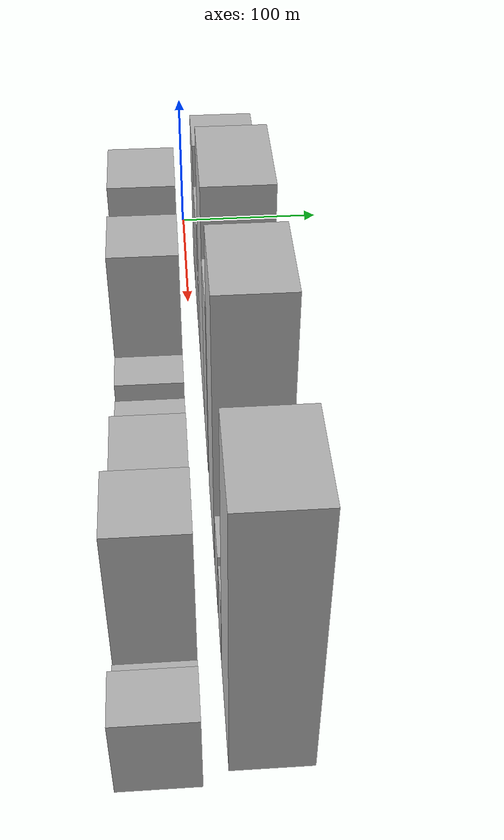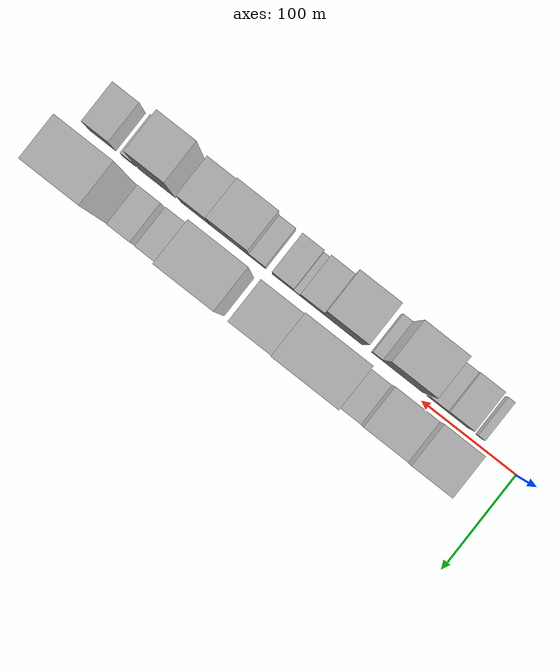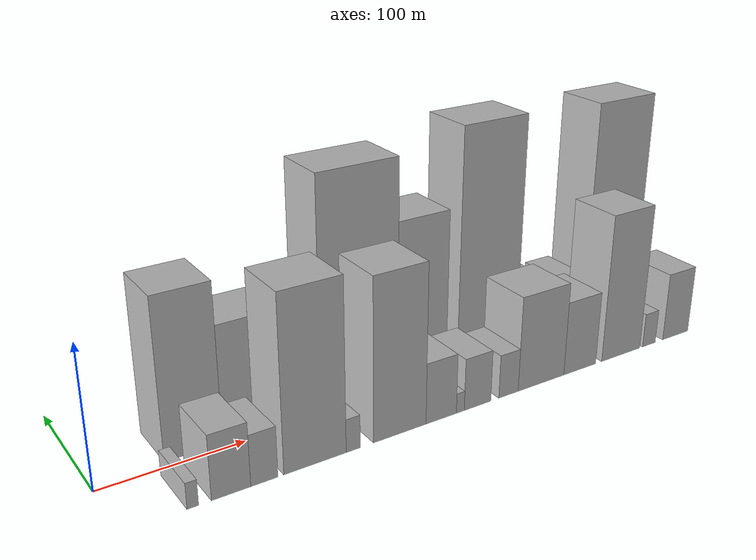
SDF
<sdf version="1.6">
 <world name="default">
  <scene>
   <sky><clouds><speed>12</speed></clouds></sky>
   <ambient>0.4 0.4 0.4 1</ambient>
   <background>0.7 0.7 0.7 1</background>
   <shadows>1</shadows>
  </scene>
  <gravity>0 0 -9.8066</gravity>
  <magnetic_field>6e-06 2.3e-05 -4.2e-05</magnetic_field>
  <physics default="0" name="default_physics" type="ode">
   <ode>
    <solver>
     <type>quick</type>
     <iters>10</iters>
     <sor>1.0</sor>
     <use_dynamic_moi_rescaling>0</use_dynamic_moi_rescaling>
    </solver>
    <constraints>
     <cfm>0</cfm>
     <erp>0.2</erp>
     <contact_max_correcting_vel>100</contact_max_correcting_vel>
     <contact_surface_layer>0.001</contact_surface_layer>
    </constraints>
   </ode>
   <max_step_size>0.004</max_step_size>
   <real_time_factor>1</real_time_factor>
   <real_time_update_rate>250</real_time_update_rate>
  </physics>
  <light name="sun" type="directional">
   <pose>0 0 10 0 0 0</pose>
   <diffuse>0.8 0.8 0.8 1</diffuse>
   <specular>0.2 0.2 0.2 1</specular>
   <attenuation>
    <range>1000</range>
    <constant>0.9</constant>
    <linear>0.01</linear>
    <quadratic>0.001</quadratic>
   </attenuation>
   <direction>-0.5 0.1 -0.9</direction>
  </light>
  <model name="building_1">
   <static>1</static>
   <pose>66.8223 26.0000 0 0.000000 0.000000 1.570796</pose>
   <link name="link">
    <pose>0 0 57.00 0 0 0</pose>
    <collision name="collision"><geometry><box><size>40.0000 39.6447 114.0000</size></box></geometry></collision>
    <visual name="visual">
     <cast_shadows>0</cast_shadows>
     <geometry><box><size>40.0000 39.6447 114.0000</size></box></geometry>
     <material>
      <script>
       <uri>model://HANNAS_wall/materials/scripts</uri>
       <uri>model://HANNAS_wall/materials/textures</uri>
       <name>vrc/HANNAS_wall</name>
      </script>
     </material>
    </visual>
   </link>
  </model>
  <model name="building_2">
   <static>1</static>
   <pose>108.6687 26.0000 0 0.000000 0.000000 1.570796</pose>
   <link name="link">
    <pose>0 0 42.00 0 0 0</pose>
    <collision name="collision"><geometry><box><size>40.0000 44.0480 84.0000</size></box></geometry></collision>
    <visual name="visual">
     <cast_shadows>0</cast_shadows>
     <geometry><box><size>40.0000 44.0480 84.0000</size></box></geometry>
     <material>
      <script>
       <uri>model://HANNAS_wall/materials/scripts</uri>
       <uri>model://HANNAS_wall/materials/textures</uri>
       <name>vrc/HANNAS_wall</name>
      </script>
     </material>
    </visual>
   </link>
  </model>
  <model name="building_3">
   <static>1</static>
   <pose>144.6957 26.0000 0 0.000000 0.000000 1.570796</pose>
   <link name="link">
    <pose>0 0 24.00 0 0 0</pose>
    <collision name="collision"><geometry><box><size>40.0000 28.0060 48.0000</size></box></geometry></collision>
    <visual name="visual">
     <cast_shadows>0</cast_shadows>
     <geometry><box><size>40.0000 28.0060 48.0000</size></box></geometry>
     <material>
      <script>
       <uri>model://HANNAS_wall/materials/scripts</uri>
       <uri>model://HANNAS_wall/materials/textures</uri>
       <name>vrc/HANNAS_wall</name>
      </script>
     </material>
    </visual>
   </link>
  </model>
  <model name="building_4">
   <static>1</static>
   <pose>189.7452 26.0000 0 0.000000 0.000000 1.570796</pose>
   <link name="link">
    <pose>0 0 84.00 0 0 0</pose>
    <collision name="collision"><geometry><box><size>40.0000 62.0931 168.0000</size></box></geometry></collision>
    <visual name="visual">
     <cast_shadows>0</cast_shadows>
     <geometry><box><size>40.0000 62.0931 168.0000</size></box></geometry>
     <material>
      <script>
       <uri>model://HANNAS_wall/materials/scripts</uri>
       <uri>model://HANNAS_wall/materials/textures</uri>
       <name>vrc/HANNAS_wall</name>
      </script>
     </material>
    </visual>
   </link>
  </model>
  <model name="building_5">
   <static>1</static>
   <pose>241.5375 26.0000 0 0.000000 0.000000 1.570796</pose>
   <link name="link">
    <pose>0 0 61.50 0 0 0</pose>
    <collision name="collision"><geometry><box><size>40.0000 41.4915 123.0000</size></box></geometry></collision>
    <visual name="visual">
     <cast_shadows>0</cast_shadows>
     <geometry><box><size>40.0000 41.4915 123.0000</size></box></geometry>
     <material>
      <script>
       <uri>model://HANNAS_wall/materials/scripts</uri>
       <uri>model://HANNAS_wall/materials/textures</uri>
       <name>vrc/HANNAS_wall</name>
      </script>
     </material>
    </visual>
   </link>
  </model>
  <model name="building_6">
   <static>1</static>
   <pose>299.5882 26.0000 0 0.000000 0.000000 1.570796</pose>
   <link name="link">
    <pose>0 0 90.00 0 0 0</pose>
    <collision name="collision"><geometry><box><size>40.0000 54.6101 180.0000</size></box></geometry></collision>
    <visual name="visual">
     <cast_shadows>0</cast_shadows>
     <geometry><box><size>40.0000 54.6101 180.0000</size></box></geometry>
     <material>
      <script>
       <uri>model://HANNAS_wall/materials/scripts</uri>
       <uri>model://HANNAS_wall/materials/textures</uri>
       <name>vrc/HANNAS_wall</name>
      </script>
     </material>
    </visual>
   </link>
  </model>
  <model name="building_7">
   <static>1</static>
   <pose>330.7114 26.0000 0 0.000000 0.000000 1.570796</pose>
   <link name="link">
    <pose>0 0 9.00 0 0 0</pose>
    <collision name="collision"><geometry><box><size>40.0000 7.6363 18.0000</size></box></geometry></collision>
    <visual name="visual">
     <cast_shadows>0</cast_shadows>
     <geometry><box><size>40.0000 7.6363 18.0000</size></box></geometry>
     <material>
      <script>
       <uri>model://HANNAS_wall/materials/scripts</uri>
       <uri>model://HANNAS_wall/materials/textures</uri>
       <name>vrc/HANNAS_wall</name>
      </script>
     </material>
    </visual>
   </link>
  </model>
  <model name="building_8">
   <static>1</static>
   <pose>347.9633 26.0000 0 0.000000 0.000000 1.570796</pose>
   <link name="link">
    <pose>0 0 22.50 0 0 0</pose>
    <collision name="collision"><geometry><box><size>40.0000 26.8674 45.0000</size></box></geometry></collision>
    <visual name="visual">
     <cast_shadows>0</cast_shadows>
     <geometry><box><size>40.0000 26.8674 45.0000</size></box></geometry>
     <material>
      <script>
       <uri>model://HANNAS_wall/materials/scripts</uri>
       <uri>model://HANNAS_wall/materials/textures</uri>
       <name>vrc/HANNAS_wall</name>
      </script>
     </material>
    </visual>
   </link>
  </model>
  <model name="building_9">
   <static>1</static>
   <pose>378.2147 26.0000 0 0.000000 0.000000 1.570796</pose>
   <link name="link">
    <pose>0 0 22.50 0 0 0</pose>
    <collision name="collision"><geometry><box><size>40.0000 23.6355 45.0000</size></box></geometry></collision>
    <visual name="visual">
     <cast_shadows>0</cast_shadows>
     <geometry><box><size>40.0000 23.6355 45.0000</size></box></geometry>
     <material>
      <script>
       <uri>model://HANNAS_wall/materials/scripts</uri>
       <uri>model://HANNAS_wall/materials/textures</uri>
       <name>vrc/HANNAS_wall</name>
      </script>
     </material>
    </visual>
   </link>
  </model>
  <model name="building_10">
   <static>1</static>
   <pose>421.1120 26.0000 0 0.000000 0.000000 1.570796</pose>
   <link name="link">
    <pose>0 0 88.50 0 0 0</pose>
    <collision name="collision"><geometry><box><size>40.0000 54.1592 177.0000</size></box></geometry></collision>
    <visual name="visual">
     <cast_shadows>0</cast_shadows>
     <geometry><box><size>40.0000 54.1592 177.0000</size></box></geometry>
     <material>
      <script>
       <uri>model://HANNAS_wall/materials/scripts</uri>
       <uri>model://HANNAS_wall/materials/textures</uri>
       <name>vrc/HANNAS_wall</name>
      </script>
     </material>
    </visual>
   </link>
  </model>
  <model name="building_11">
   <static>1</static>
   <pose>43.6693 -26.0000 0 0.000000 0.000000 1.570796</pose>
   <link name="link">
    <pose>0 0 9.00 0 0 0</pose>
    <collision name="collision"><geometry><box><size>40.0000 7.3385 18.0000</size></box></geometry></collision>
    <visual name="visual">
     <cast_shadows>0</cast_shadows>
     <geometry><box><size>40.0000 7.3385 18.0000</size></box></geometry>
     <material>
      <script>
       <uri>model://HANNAS_wall/materials/scripts</uri>
       <uri>model://HANNAS_wall/materials/textures</uri>
       <name>vrc/HANNAS_wall</name>
      </script>
     </material>
    </visual>
   </link>
  </model>
  <model name="building_12">
   <static>1</static>
   <pose>68.1040 -26.0000 0 0.000000 0.000000 1.570796</pose>
   <link name="link">
    <pose>0 0 22.50 0 0 0</pose>
    <collision name="collision"><geometry><box><size>40.0000 25.5310 45.0000</size></box></geometry></collision>
    <visual name="visual">
     <cast_shadows>0</cast_shadows>
     <geometry><box><size>40.0000 25.5310 45.0000</size></box></geometry>
     <material>
      <script>
       <uri>model://HANNAS_wall/materials/scripts</uri>
       <uri>model://HANNAS_wall/materials/textures</uri>
       <name>vrc/HANNAS_wall</name>
      </script>
     </material>
    </visual>
   </link>
  </model>
  <model name="building_13">
   <static>1</static>
   <pose>89.9854 -26.0000 0 0.000000 0.000000 1.570796</pose>
   <link name="link">
    <pose>0 0 18.00 0 0 0</pose>
    <collision name="collision"><geometry><box><size>40.0000 18.2319 36.0000</size></box></geometry></collision>
    <visual name="visual">
     <cast_shadows>0</cast_shadows>
     <geometry><box><size>40.0000 18.2319 36.0000</size></box></geometry>
     <material>
      <script>
       <uri>model://HANNAS_wall/materials/scripts</uri>
       <uri>model://HANNAS_wall/materials/textures</uri>
       <name>vrc/HANNAS_wall</name>
      </script>
     </material>
    </visual>
   </link>
  </model>
  <model name="building_14">
   <static>1</static>
   <pose>125.2123 -26.0000 0 0.000000 0.000000 1.570796</pose>
   <link name="link">
    <pose>0 0 61.50 0 0 0</pose>
    <collision name="collision"><geometry><box><size>40.0000 44.2219 123.0000</size></box></geometry></collision>
    <visual name="visual">
     <cast_shadows>0</cast_shadows>
     <geometry><box><size>40.0000 44.2219 123.0000</size></box></geometry>
     <material>
      <script>
       <uri>model://HANNAS_wall/materials/scripts</uri>
       <uri>model://HANNAS_wall/materials/textures</uri>
       <name>vrc/HANNAS_wall</name>
      </script>
     </material>
    </visual>
   </link>
  </model>
  <model name="building_15">
   <static>1</static>
   <pose>152.5214 -26.0000 0 0.000000 0.000000 1.570796</pose>
   <link name="link">
    <pose>0 0 12.00 0 0 0</pose>
    <collision name="collision"><geometry><box><size>40.0000 10.3963 24.0000</size></box></geometry></collision>
    <visual name="visual">
     <cast_shadows>0</cast_shadows>
     <geometry><box><size>40.0000 10.3963 24.0000</size></box></geometry>
     <material>
      <script>
       <uri>model://HANNAS_wall/materials/scripts</uri>
       <uri>model://HANNAS_wall/materials/textures</uri>
       <name>vrc/HANNAS_wall</name>
      </script>
     </material>
    </visual>
   </link>
  </model>
  <model name="building_16">
   <static>1</static>
   <pose>188.0706 -26.0000 0 0.000000 0.000000 1.570796</pose>
   <link name="link">
    <pose>0 0 58.50 0 0 0</pose>
    <collision name="collision"><geometry><box><size>40.0000 40.7020 117.0000</size></box></geometry></collision>
    <visual name="visual">
     <cast_shadows>0</cast_shadows>
     <geometry><box><size>40.0000 40.7020 117.0000</size></box></geometry>
     <material>
      <script>
       <uri>model://HANNAS_wall/materials/scripts</uri>
       <uri>model://HANNAS_wall/materials/textures</uri>
       <name>vrc/HANNAS_wall</name>
      </script>
     </material>
    </visual>
   </link>
  </model>
  <model name="building_17">
   <static>1</static>
   <pose>220.8014 -26.0000 0 0.000000 0.000000 1.570796</pose>
   <link name="link">
    <pose>0 0 22.50 0 0 0</pose>
    <collision name="collision"><geometry><box><size>40.0000 24.7597 45.0000</size></box></geometry></collision>
    <visual name="visual">
     <cast_shadows>0</cast_shadows>
     <geometry><box><size>40.0000 24.7597 45.0000</size></box></geometry>
     <material>
      <script>
       <uri>model://HANNAS_wall/materials/scripts</uri>
       <uri>model://HANNAS_wall/materials/textures</uri>
       <name>vrc/HANNAS_wall</name>
      </script>
     </material>
    </visual>
   </link>
  </model>
  <model name="building_18">
   <static>1</static>
   <pose>236.5034 -26.0000 0 0.000000 0.000000 1.570796</pose>
   <link name="link">
    <pose>0 0 7.50 0 0 0</pose>
    <collision name="collision"><geometry><box><size>40.0000 6.6444 15.0000</size></box></geometry></collision>
    <visual name="visual">
     <cast_shadows>0</cast_shadows>
     <geometry><box><size>40.0000 6.6444 15.0000</size></box></geometry>
     <material>
      <script>
       <uri>model://HANNAS_wall/materials/scripts</uri>
       <uri>model://HANNAS_wall/materials/textures</uri>
       <name>vrc/HANNAS_wall</name>
      </script>
     </material>
    </visual>
   </link>
  </model>
  <model name="building_19">
   <static>1</static>
   <pose>251.0893 -26.0000 0 0.000000 0.000000 1.570796</pose>
   <link name="link">
    <pose>0 0 19.50 0 0 0</pose>
    <collision name="collision"><geometry><box><size>40.0000 22.5274 39.0000</size></box></geometry></collision>
    <visual name="visual">
     <cast_shadows>0</cast_shadows>
     <geometry><box><size>40.0000 22.5274 39.0000</size></box></geometry>
     <material>
      <script>
       <uri>model://HANNAS_wall/materials/scripts</uri>
       <uri>model://HANNAS_wall/materials/textures</uri>
       <name>vrc/HANNAS_wall</name>
      </script>
     </material>
    </visual>
   </link>
  </model>
  <model name="building_20">
   <static>1</static>
   <pose>277.8937 -26.0000 0 0.000000 0.000000 1.570796</pose>
   <link name="link">
    <pose>0 0 16.50 0 0 0</pose>
    <collision name="collision"><geometry><box><size>40.0000 17.0815 33.0000</size></box></geometry></collision>
    <visual name="visual">
     <cast_shadows>0</cast_shadows>
     <geometry><box><size>40.0000 17.0815 33.0000</size></box></geometry>
     <material>
      <script>
       <uri>model://HANNAS_wall/materials/scripts</uri>
       <uri>model://HANNAS_wall/materials/textures</uri>
       <name>vrc/HANNAS_wall</name>
      </script>
     </material>
    </visual>
   </link>
  </model>
  <model name="building_21">
   <static>1</static>
   <pose>307.3929 -26.0000 0 0.000000 0.000000 1.570796</pose>
   <link name="link">
    <pose>0 0 36.00 0 0 0</pose>
    <collision name="collision"><geometry><box><size>40.0000 41.9169 72.0000</size></box></geometry></collision>
    <visual name="visual">
     <cast_shadows>0</cast_shadows>
     <geometry><box><size>40.0000 41.9169 72.0000</size></box></geometry>
     <material>
      <script>
       <uri>model://HANNAS_wall/materials/scripts</uri>
       <uri>model://HANNAS_wall/materials/textures</uri>
       <name>vrc/HANNAS_wall</name>
      </script>
     </material>
    </visual>
   </link>
  </model>
  <model name="building_22">
   <static>1</static>
   <pose>343.6832 -26.0000 0 0.000000 0.000000 1.570796</pose>
   <link name="link">
    <pose>0 0 28.50 0 0 0</pose>
    <collision name="collision"><geometry><box><size>40.0000 30.6637 57.0000</size></box></geometry></collision>
    <visual name="visual">
     <cast_shadows>0</cast_shadows>
     <geometry><box><size>40.0000 30.6637 57.0000</size></box></geometry>
     <material>
      <script>
       <uri>model://HANNAS_wall/materials/scripts</uri>
       <uri>model://HANNAS_wall/materials/textures</uri>
       <name>vrc/HANNAS_wall</name>
      </script>
     </material>
    </visual>
   </link>
  </model>
  <model name="building_23">
   <static>1</static>
   <pose>384.3029 -26.0000 0 0.000000 0.000000 1.570796</pose>
   <link name="link">
    <pose>0 0 57.00 0 0 0</pose>
    <collision name="collision"><geometry><box><size>40.0000 38.5756 114.0000</size></box></geometry></collision>
    <visual name="visual">
     <cast_shadows>0</cast_shadows>
     <geometry><box><size>40.0000 38.5756 114.0000</size></box></geometry>
     <material>
      <script>
       <uri>model://HANNAS_wall/materials/scripts</uri>
       <uri>model://HANNAS_wall/materials/textures</uri>
       <name>vrc/HANNAS_wall</name>
      </script>
     </material>
    </visual>
   </link>
  </model>
  <model name="building_24">
   <static>1</static>
   <pose>413.2371 -26.0000 0 0.000000 0.000000 1.570796</pose>
   <link name="link">
    <pose>0 0 13.50 0 0 0</pose>
    <collision name="collision"><geometry><box><size>40.0000 13.2928 27.0000</size></box></geometry></collision>
    <visual name="visual">
     <cast_shadows>0</cast_shadows>
     <geometry><box><size>40.0000 13.2928 27.0000</size></box></geometry>
     <material>
      <script>
       <uri>model://HANNAS_wall/materials/scripts</uri>
       <uri>model://HANNAS_wall/materials/textures</uri>
       <name>vrc/HANNAS_wall</name>
      </script>
     </material>
    </visual>
   </link>
  </model>
  <model name="building_25">
   <static>1</static>
   <pose>441.4515 -26.0000 0 0.000000 0.000000 1.570796</pose>
   <link name="link">
    <pose>0 0 27.00 0 0 0</pose>
    <collision name="collision"><geometry><box><size>40.0000 27.1361 54.0000</size></box></geometry></collision>
    <visual name="visual">
     <cast_shadows>0</cast_shadows>
     <geometry><box><size>40.0000 27.1361 54.0000</size></box></geometry>
     <material>
      <script>
       <uri>model://HANNAS_wall/materials/scripts</uri>
       <uri>model://HANNAS_wall/materials/textures</uri>
       <name>vrc/HANNAS_wall</name>
      </script>
     </material>
    </visual>
   </link>
  </model>
 </world>
</sdf>
